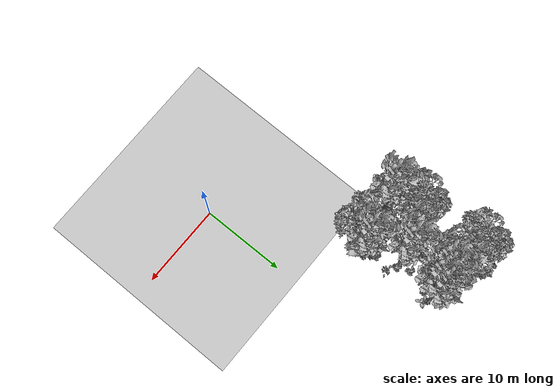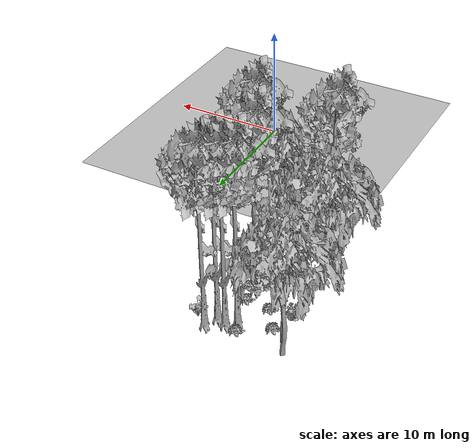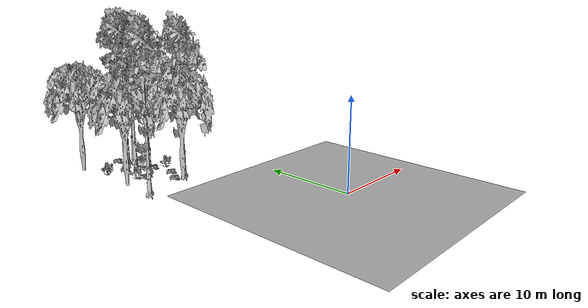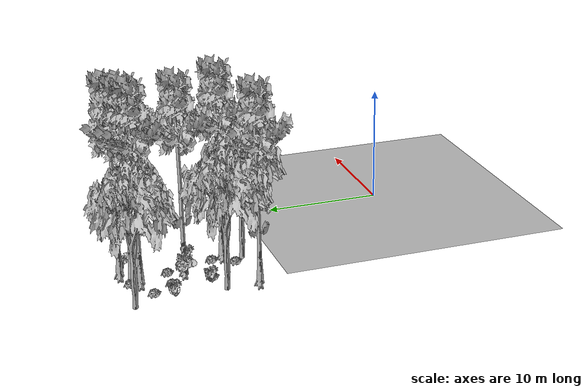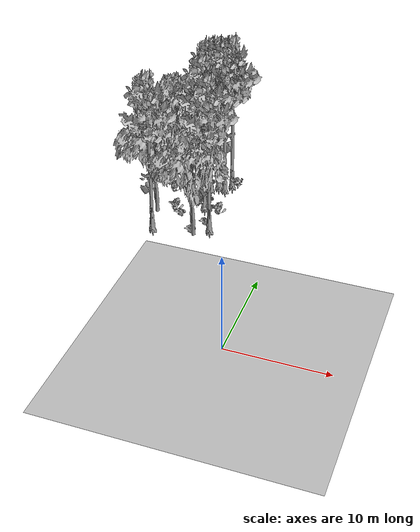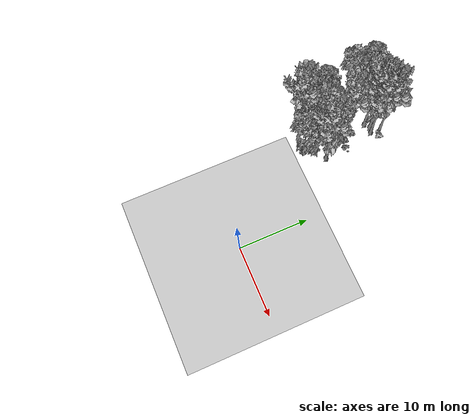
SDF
<sdf version="1.7">
 <world name="default">
  <model name="ground_plane">
   <static>1</static>
   <link name="link">
    <collision name="collision">
     <pose>-50 0 0 0 -0 0</pose>
     <geometry><plane><normal>0 0 1</normal><size>80 80</size></plane></geometry>
     <surface><contact><ode><min_depth>0.01</min_depth><max_vel>0</max_vel></ode></contact></surface>
    </collision>
    <visual name="grass">
     <cast_shadows>0</cast_shadows>
     <geometry>
      <mesh>
       <scale>0.46714285714285714 0.46714285714285714 0.1</scale>
       <uri>file://grass_plane/meshes/grass_plane.dae</uri>
      </mesh>
     </geometry>
    </visual>
   </link>
  </model>
  <model name="Tree 16">
   <static>1</static>
   <pose>-12.949339108152707 15.026381840691194 0 1.57079 -0 0</pose>
   <link name="link">
    <collision name="collision">
     <geometry><mesh><scale>3.5 5 3.5</scale><uri>model://tree_9/meshes/tree_9.obj</uri></mesh></geometry>
    </collision>
    <visual name="visual">
     <geometry><mesh><scale>3.5 5 3.5</scale><uri>model://tree_9/meshes/tree_9.obj</uri></mesh></geometry>
    </visual>
   </link>
  </model>
  <model name="Tree 39">
   <static>1</static>
   <pose>-9.233260500796145 20.261417785642983 0 1.57079 -0 0</pose>
   <link name="link">
    <collision name="collision">
     <geometry><mesh><scale>3.5 5 3.5</scale><uri>model://tree_9/meshes/tree_9.obj</uri></mesh></geometry>
    </collision>
    <visual name="visual">
     <geometry><mesh><scale>3.5 5 3.5</scale><uri>model://tree_9/meshes/tree_9.obj</uri></mesh></geometry>
    </visual>
   </link>
  </model>
  <model name="Tree 186">
   <static>1</static>
   <pose>-9.177271808983512 24.561281431154484 0 1.57079 -0 0</pose>
   <link name="link">
    <collision name="collision">
     <geometry><mesh><scale>3.5 5 3.5</scale><uri>model://tree_9/meshes/tree_9.obj</uri></mesh></geometry>
    </collision>
    <visual name="visual">
     <geometry><mesh><scale>3.5 5 3.5</scale><uri>model://tree_9/meshes/tree_9.obj</uri></mesh></geometry>
    </visual>
   </link>
  </model>
  <model name="Tree 213">
   <static>1</static>
   <pose>-8.624474460149298 15.16442082465182 0 1.57079 -0 0</pose>
   <link name="link">
    <collision name="collision">
     <geometry><mesh><scale>3.5 5 3.5</scale><uri>model://tree_2/meshes/tree_2.obj</uri></mesh></geometry>
    </collision>
    <visual name="visual">
     <geometry><mesh><scale>3.5 5 3.5</scale><uri>model://tree_2/meshes/tree_2.obj</uri></mesh></geometry>
    </visual>
   </link>
  </model>
  <model name="Tree 308">
   <static>1</static>
   <pose>-13.691646077242474 17.89684731761534 0 1.57079 -0 0</pose>
   <link name="link">
    <collision name="collision">
     <geometry><mesh><scale>3.5 5 3.5</scale><uri>model://tree_2/meshes/tree_2.obj</uri></mesh></geometry>
    </collision>
    <visual name="visual">
     <geometry><mesh><scale>3.5 5 3.5</scale><uri>model://tree_2/meshes/tree_2.obj</uri></mesh></geometry>
    </visual>
   </link>
  </model>
  <model name="Tree 453">
   <static>1</static>
   <pose>-7.3139846695981845 16.563022518393105 0 1.57079 -0 0</pose>
   <link name="link">
    <collision name="collision">
     <geometry><mesh><scale>3.5 5 3.5</scale><uri>model://tree_9/meshes/tree_9.obj</uri></mesh></geometry>
    </collision>
    <visual name="visual">
     <geometry><mesh><scale>3.5 5 3.5</scale><uri>model://tree_9/meshes/tree_9.obj</uri></mesh></geometry>
    </visual>
   </link>
  </model>
  <model name="Tree 518">
   <static>1</static>
   <pose>-8.374454123994585 24.279587388849194 0 1.57079 -0 0</pose>
   <link name="link">
    <collision name="collision">
     <geometry><mesh><scale>3.5 5 3.5</scale><uri>model://tree_9/meshes/tree_9.obj</uri></mesh></geometry>
    </collision>
    <visual name="visual">
     <geometry><mesh><scale>3.5 5 3.5</scale><uri>model://tree_9/meshes/tree_9.obj</uri></mesh></geometry>
    </visual>
   </link>
  </model>
  <model name="Tree 531">
   <static>1</static>
   <pose>-14.352066476920022 25.381464168632604 0 1.57079 -0 0</pose>
   <link name="link">
    <collision name="collision">
     <geometry><mesh><scale>3.5 5 3.5</scale><uri>model://tree_2/meshes/tree_2.obj</uri></mesh></geometry>
    </collision>
    <visual name="visual">
     <geometry><mesh><scale>3.5 5 3.5</scale><uri>model://tree_2/meshes/tree_2.obj</uri></mesh></geometry>
    </visual>
   </link>
  </model>
  <model name="Tree 586">
   <static>1</static>
   <pose>-7.873638181068891 25.282063982079862 0 1.57079 -0 0</pose>
   <link name="link">
    <collision name="collision">
     <geometry><mesh><scale>3.5 5 3.5</scale><uri>model://tree_9/meshes/tree_9.obj</uri></mesh></geometry>
    </collision>
    <visual name="visual">
     <geometry><mesh><scale>3.5 5 3.5</scale><uri>model://tree_9/meshes/tree_9.obj</uri></mesh></geometry>
    </visual>
   </link>
  </model>
  <model name="Tree 605">
   <static>1</static>
   <pose>-9.882233568380244 24.015669992851116 0 1.57079 -0 0</pose>
   <link name="link">
    <collision name="collision">
     <geometry><mesh><scale>3.5 5 3.5</scale><uri>model://tree_9/meshes/tree_9.obj</uri></mesh></geometry>
    </collision>
    <visual name="visual">
     <geometry><mesh><scale>3.5 5 3.5</scale><uri>model://tree_9/meshes/tree_9.obj</uri></mesh></geometry>
    </visual>
   </link>
  </model>
  <model name="Bush 97">
   <static>1</static>
   <pose>-9.91387105447495 20.22569252541082 0 1.57079 -0 0</pose>
   <link name="link">
    <collision name="collision">
     <geometry><mesh><scale>2 2 2</scale><uri>model://bush_1/meshes/bush_1.obj</uri></mesh></geometry>
     <surface><contact><collide_without_contact>false</collide_without_contact></contact></surface>
    </collision>
    <visual name="visual">
     <geometry><mesh><scale>2 2 2</scale><uri>model://bush_1/meshes/bush_1.obj</uri></mesh></geometry>
    </visual>
   </link>
  </model>
  <model name="Bush 125">
   <static>1</static>
   <pose>-8.688745979113673 20.245243476929822 0 1.57079 -0 0</pose>
   <link name="link">
    <collision name="collision">
     <geometry><mesh><scale>2 2 2</scale><uri>model://bush_2/meshes/bush_2.obj</uri></mesh></geometry>
     <surface><contact><collide_without_contact>false</collide_without_contact></contact></surface>
    </collision>
    <visual name="visual">
     <geometry><mesh><scale>2 2 2</scale><uri>model://bush_2/meshes/bush_2.obj</uri></mesh></geometry>
    </visual>
   </link>
  </model>
  <model name="Bush 198">
   <static>1</static>
   <pose>-11.322282022899337 21.776074364512667 0 1.57079 -0 0</pose>
   <link name="link">
    <collision name="collision">
     <geometry><mesh><scale>2 2 2</scale><uri>model://bush_2/meshes/bush_2.obj</uri></mesh></geometry>
     <surface><contact><collide_without_contact>false</collide_without_contact></contact></surface>
    </collision>
    <visual name="visual">
     <geometry><mesh><scale>2 2 2</scale><uri>model://bush_2/meshes/bush_2.obj</uri></mesh></geometry>
    </visual>
   </link>
  </model>
  <model name="Bush 213">
   <static>1</static>
   <pose>-12.516324983900677 23.472225897145947 0 1.57079 -0 0</pose>
   <link name="link">
    <collision name="collision">
     <geometry><mesh><scale>2 2 2</scale><uri>model://bush_2/meshes/bush_2.obj</uri></mesh></geometry>
     <surface><contact><collide_without_contact>false</collide_without_contact></contact></surface>
    </collision>
    <visual name="visual">
     <geometry><mesh><scale>2 2 2</scale><uri>model://bush_2/meshes/bush_2.obj</uri></mesh></geometry>
    </visual>
   </link>
  </model>
  <model name="Bush 237">
   <static>1</static>
   <pose>-9.294540305816454 21.651426107229184 0 1.57079 -0 0</pose>
   <link name="link">
    <collision name="collision">
     <geometry><mesh><scale>2 2 2</scale><uri>model://bush_2/meshes/bush_2.obj</uri></mesh></geometry>
     <surface><contact><collide_without_contact>false</collide_without_contact></contact></surface>
    </collision>
    <visual name="visual">
     <geometry><mesh><scale>2 2 2</scale><uri>model://bush_2/meshes/bush_2.obj</uri></mesh></geometry>
    </visual>
   </link>
  </model>
  <model name="Bush 263">
   <static>1</static>
   <pose>-7.4390126875923315 19.485495998418266 0 1.57079 -0 0</pose>
   <link name="link">
    <collision name="collision">
     <geometry><mesh><scale>2 2 2</scale><uri>model://bush_4/meshes/bush_4.obj</uri></mesh></geometry>
     <surface><contact><collide_without_contact>false</collide_without_contact></contact></surface>
    </collision>
    <visual name="visual">
     <geometry><mesh><scale>2 2 2</scale><uri>model://bush_4/meshes/bush_4.obj</uri></mesh></geometry>
    </visual>
   </link>
  </model>
  <model name="Bush 281">
   <static>1</static>
   <pose>-8.21698719243128 17.658807201482304 0 1.57079 -0 0</pose>
   <link name="link">
    <collision name="collision">
     <geometry><mesh><scale>2 2 2</scale><uri>model://bush_2/meshes/bush_2.obj</uri></mesh></geometry>
     <surface><contact><collide_without_contact>false</collide_without_contact></contact></surface>
    </collision>
    <visual name="visual">
     <geometry><mesh><scale>2 2 2</scale><uri>model://bush_2/meshes/bush_2.obj</uri></mesh></geometry>
    </visual>
   </link>
  </model>
  <model name="Bush 437">
   <static>1</static>
   <pose>-13.295423995201254 22.01018950939556 0 1.57079 -0 0</pose>
   <link name="link">
    <collision name="collision">
     <geometry><mesh><scale>2 2 2</scale><uri>model://bush_4/meshes/bush_4.obj</uri></mesh></geometry>
     <surface><contact><collide_without_contact>false</collide_without_contact></contact></surface>
    </collision>
    <visual name="visual">
     <geometry><mesh><scale>2 2 2</scale><uri>model://bush_4/meshes/bush_4.obj</uri></mesh></geometry>
    </visual>
   </link>
  </model>
  <model name="Bush 450">
   <static>1</static>
   <pose>-10.276469759853278 24.89832858597657 0 1.57079 -0 0</pose>
   <link name="link">
    <collision name="collision">
     <geometry><mesh><scale>2 2 2</scale><uri>model://bush_2/meshes/bush_2.obj</uri></mesh></geometry>
     <surface><contact><collide_without_contact>false</collide_without_contact></contact></surface>
    </collision>
    <visual name="visual">
     <geometry><mesh><scale>2 2 2</scale><uri>model://bush_2/meshes/bush_2.obj</uri></mesh></geometry>
    </visual>
   </link>
  </model>
  <model name="Bush 466">
   <static>1</static>
   <pose>-7.0684728415752645 24.841182750672402 0 1.57079 -0 0</pose>
   <link name="link">
    <collision name="collision">
     <geometry><mesh><scale>2 2 2</scale><uri>model://bush_0/meshes/bush_0.obj</uri></mesh></geometry>
     <surface><contact><collide_without_contact>false</collide_without_contact></contact></surface>
    </collision>
    <visual name="visual">
     <geometry><mesh><scale>2 2 2</scale><uri>model://bush_0/meshes/bush_0.obj</uri></mesh></geometry>
    </visual>
   </link>
  </model>
  <model name="Bush 482">
   <static>1</static>
   <pose>-11.897894853387573 18.6966655064996 0 1.57079 -0 0</pose>
   <link name="link">
    <collision name="collision">
     <geometry><mesh><scale>2 2 2</scale><uri>model://bush_4/meshes/bush_4.obj</uri></mesh></geometry>
     <surface><contact><collide_without_contact>false</collide_without_contact></contact></surface>
    </collision>
    <visual name="visual">
     <geometry><mesh><scale>2 2 2</scale><uri>model://bush_4/meshes/bush_4.obj</uri></mesh></geometry>
    </visual>
   </link>
  </model>
  <model name="Bush 498">
   <static>1</static>
   <pose>-9.129496121134473 15.869873047605488 0 1.57079 -0 0</pose>
   <link name="link">
    <collision name="collision">
     <geometry><mesh><scale>2 2 2</scale><uri>model://bush_2/meshes/bush_2.obj</uri></mesh></geometry>
     <surface><contact><collide_without_contact>false</collide_without_contact></contact></surface>
    </collision>
    <visual name="visual">
     <geometry><mesh><scale>2 2 2</scale><uri>model://bush_2/meshes/bush_2.obj</uri></mesh></geometry>
    </visual>
   </link>
  </model>
  <model name="Bush 597">
   <static>1</static>
   <pose>-11.252613331690743 18.410168559616267 0 1.57079 -0 0</pose>
   <link name="link">
    <collision name="collision">
     <geometry><mesh><scale>2 2 2</scale><uri>model://bush_2/meshes/bush_2.obj</uri></mesh></geometry>
     <surface><contact><collide_without_contact>false</collide_without_contact></contact></surface>
    </collision>
    <visual name="visual">
     <geometry><mesh><scale>2 2 2</scale><uri>model://bush_2/meshes/bush_2.obj</uri></mesh></geometry>
    </visual>
   </link>
  </model>
 </world>
</sdf>
